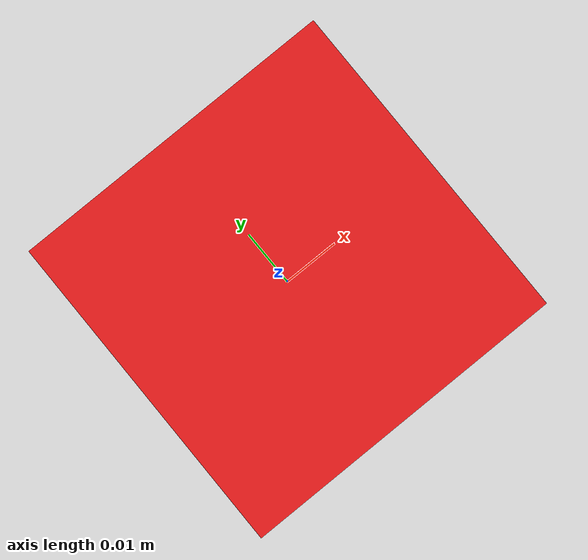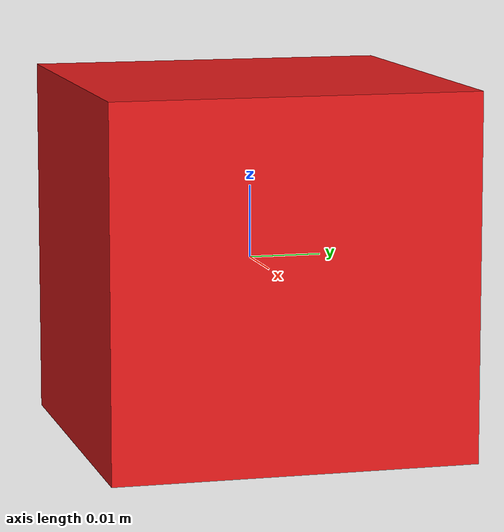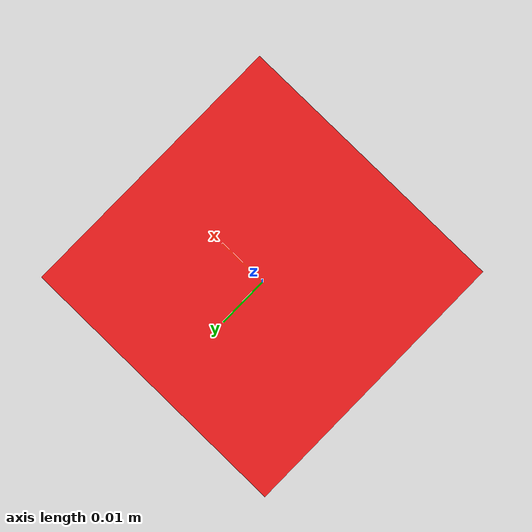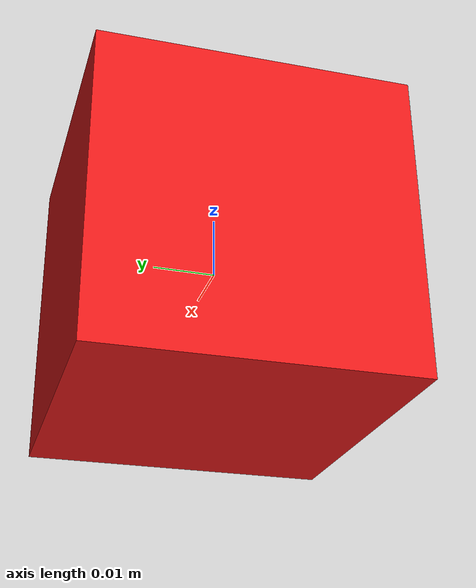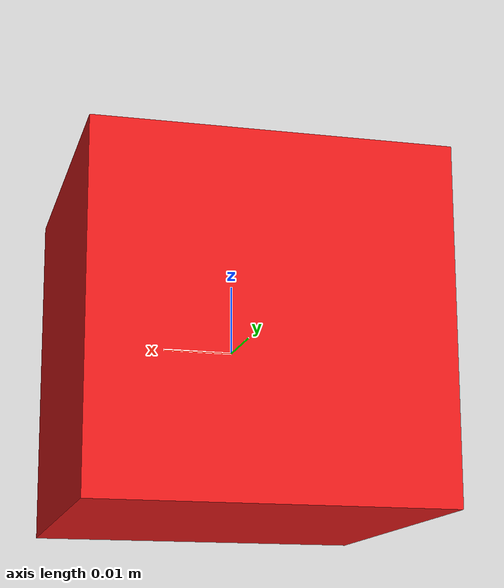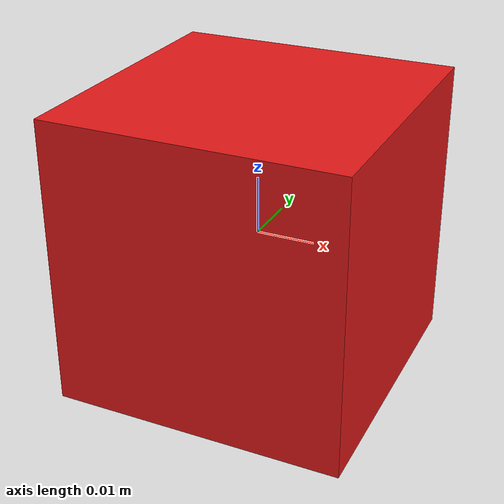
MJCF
<mujoco model="model">
  <compiler angle="radian"/>
  <asset/>
  <worldbody>
    <body>
      <body name="object">
        <geom type="box" size="0.025 0.025 0.025" rgba="0.9 0.1 0.1 1" group="1"
              contype="0" conaffinity="0"
              density="100" friction="0.95 0.3 0.1" solimp="0.998 0.998 0.001" solref="0.001 1"/>
        <geom type="box" size="0.025 0.025 0.025" group="0" rgba="0.5 0 0 0.5"
              density="1000" friction="0.95 0.3 0.1" solimp="0.998 0.998 0.001" solref="0.001 1"/>
        <geom name="reg_bbox" type="box" pos="0 0 0" size="0.025 0.025 0.025"
              group="1" contype="0" conaffinity="0" mass="0" rgba="0 1 0 0"/>
      </body>
    </body>
  </worldbody>
  <actuator/>
</mujoco>
